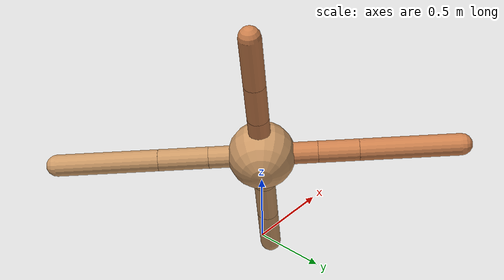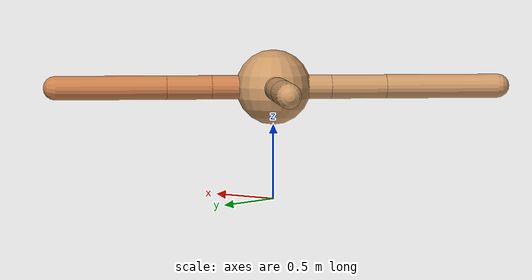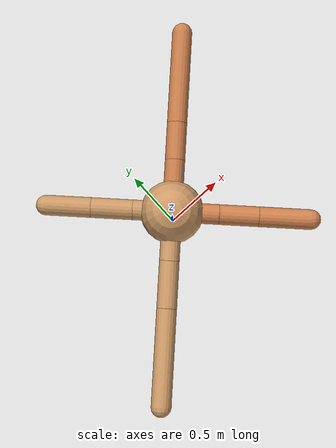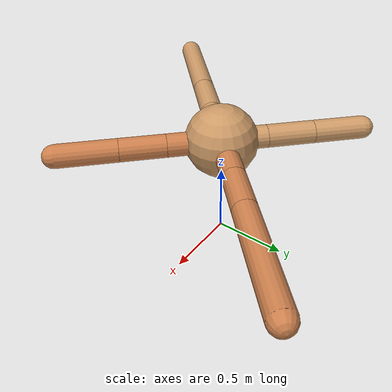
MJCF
<mujoco model="ant">
  <compiler angle="degree" coordinate="local" inertiafromgeom="true" />
  <option integrator="RK4" timestep="0.01" />
  <custom>
    <numeric data="0.0 0.0 0.55 1.0 0.0 0.0 0.0 0.0 1.0 0.0 -1.0 0.0 -1.0 0.0 1.0" name="init_qpos" />
  </custom>
  <default>
    <joint armature="1" damping="1" limited="true" />
    <geom conaffinity="0" condim="3" density="5.0" friction="1.5 0.1 0.1" margin="0.01" rgba="0.8 0.6 0.4 1" />
  </default>
  <worldbody>
    <body name="torso" pos="0 0 0.75">
      <geom name="torso_geom" pos="0 0 0" size="0.25" type="sphere" />

      <body name="front_left_leg" pos="0 0 0">
        <geom fromto="0.0 0.0 0.0 0.29082829911484315 0.29082829911484315 0.0" name="aux_1_geom" size="0.08" type="capsule" rgba=".8 .5 .3 1" />
        <body name="aux_1" pos="0.29082829911484315 0.29082829911484315 0.0">
          <joint axis="0 0 1" name="hip_1" pos="0.0 0.0 0.0" range="-40 40" type="hinge" />
          <geom fromto="0.0 0.0 0.0 0.21201342873957063 0.21201342873957063 0.0" name="left_leg_geom" size="0.08" type="capsule" rgba=".8 .5 .3 1" />
          <body pos="0.21201342873957063 0.21201342873957063 0.0" name="front_left_foot">
            <joint axis="-1 1 0" name="ankle_1" pos="0.0 0.0 0.0" range="30 100" type="hinge" />
            <geom fromto="0.0 0.0 0.0 0.5195894995990809 0.5195894995990809 0.0" name="left_ankle_geom" size="0.08" type="capsule" rgba=".8 .5 .3 1" />
          </body>
        </body>
      </body>
      <body name="front_right_leg" pos="0 0 0">
        <geom fromto="0.0 0.0 0.0 -0.2197564262652461 0.2197564262652461 0.0" name="aux_2_geom" size="0.08" type="capsule" />
        <body name="aux_2" pos="-0.2197564262652461 0.2197564262652461 0.0">
          <joint axis="0 0 1" name="hip_2" pos="0.0 0.0 0.0" range="-40 40" type="hinge" />
          <geom fromto="0.0 0.0 0.0 -0.23170896746712516 0.23170896746712516 0.0" name="right_leg_geom" size="0.08" type="capsule" />
          <body pos="-0.23170896746712516 0.23170896746712516 0.0" name="front_right_foot">
            <joint axis="1 1 0" name="ankle_2" pos="0.0 0.0 0.0" range="-100 -30" type="hinge" />
            <geom fromto="0.0 0.0 0.0 -0.25035405683429274 0.25035405683429274 0.0" name="right_ankle_geom" size="0.08" type="capsule" />
          </body>
        </body>
      </body>
      <body name="left_back_leg" pos="0 0 0">
        <geom fromto="0.0 0.0 0.0 -0.27373561644045424 -0.27373561644045424 0.0" name="aux_3_geom" size="0.08" type="capsule" />
        <body name="aux_3" pos="-0.27373561644045424 -0.27373561644045424 0.0">
          <joint axis="0 0 1" name="hip_3" pos="0.0 0.0 0.0" range="-40 40" type="hinge" />
          <geom fromto="0.0 0.0 0.0 -0.26166779597482687 -0.26166779597482687 0.0" name="back_leg_geom" size="0.08" type="capsule" />
          <body pos="-0.26166779597482687 -0.26166779597482687 0.0" name="left_back_foot">
            <joint axis="-1 1 0" name="ankle_3" pos="0.0 0.0 0.0" range="-100 -30" type="hinge" />
            <geom fromto="0.0 0.0 0.0 -0.5353054196758558 -0.5353054196758558 0.0" name="third_ankle_geom" size="0.08" type="capsule" />
          </body>
        </body>
      </body>
      <body name="right_back_leg" pos="0 0 0">
        <geom fromto="0.0 0.0 0.0 0.26138736866756657 -0.26138736866756657 0.0" name="aux_4_geom" size="0.08" type="capsule" rgba=".8 .5 .3 1" />
        <body name="aux_4" pos="0.26138736866756657 -0.26138736866756657 0.0">
          <joint axis="0 0 1" name="hip_4" pos="0.0 0.0 0.0" range="-40 40" type="hinge" />
          <geom fromto="0.0 0.0 0.0 0.22004814792032482 -0.22004814792032482 0.0" name="rightback_leg_geom" size="0.08" type="capsule" rgba=".8 .5 .3 1" />
          <body pos="0.22004814792032482 -0.22004814792032482 0.0" name="right_back_foot">
            <joint axis="1 1 0" name="ankle_4" pos="0.0 0.0 0.0" range="30 100" type="hinge" />
            <geom fromto="0.0 0.0 0.0 0.29066412140124653 -0.29066412140124653 0.0" name="fourth_ankle_geom" size="0.08" type="capsule" rgba=".8 .5 .3 1" />
          </body>
        </body>
      </body>
    </body>
  </worldbody>
  <actuator>
    <motor ctrllimited="true" ctrlrange="-1.0 1.0" joint="hip_4" gear="150" />
    <motor ctrllimited="true" ctrlrange="-1.0 1.0" joint="ankle_4" gear="150" />
    <motor ctrllimited="true" ctrlrange="-1.0 1.0" joint="hip_1" gear="150" />
    <motor ctrllimited="true" ctrlrange="-1.0 1.0" joint="ankle_1" gear="150" />
    <motor ctrllimited="true" ctrlrange="-1.0 1.0" joint="hip_2" gear="150" />
    <motor ctrllimited="true" ctrlrange="-1.0 1.0" joint="ankle_2" gear="150" />
    <motor ctrllimited="true" ctrlrange="-1.0 1.0" joint="hip_3" gear="150" />
    <motor ctrllimited="true" ctrlrange="-1.0 1.0" joint="ankle_3" gear="150" />
  </actuator>
</mujoco>
